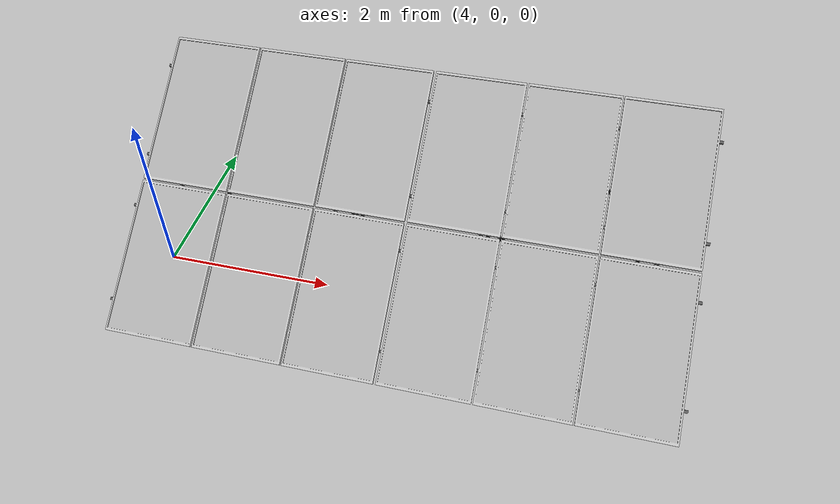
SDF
<?xml version="1.0" ?>
<sdf version="1.5">
  <model name="Paineis Solares">
    <static>true</static>
    <link name="link">
      <visual name="paineis_solares">
        <cast_shadows>true</cast_shadows>
        <pose>0 0 0 0 0 0</pose>
        <geometry>
          <mesh><uri>model://paineis_solares/meshes/solar.dae</uri></mesh>
        </geometry>
      </visual>
    </link>
  </model>
</sdf>
